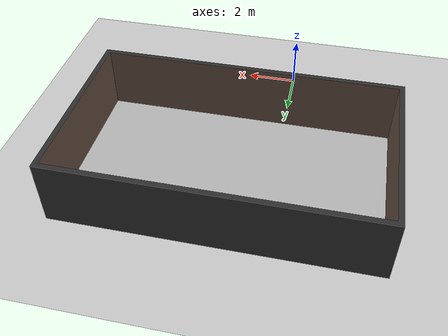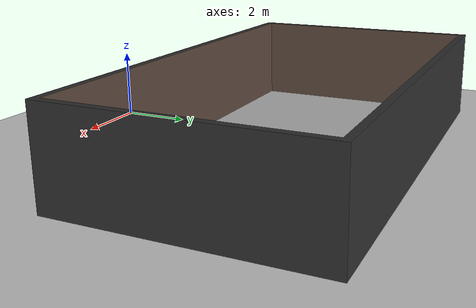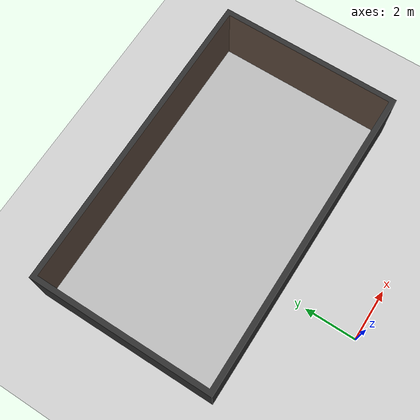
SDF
<?xml version="1.0"?>
<sdf version="1.5">
  <world name="default">
        <include>  <!--Add a light source-->
            <uri>model://sun</uri>
        </include>

        <include>  <!--Add a ground plane-->
            <uri>model://ground_plane</uri>
        </include>

        <include>  <!--Add custom room model-->
            <static>true</static>
            <uri>model://test_room</uri>
            <name> Finished_single_room </name>
            <pose> -4.5 3 0 0 0 0 </pose>
        </include>

  </world>
</sdf>

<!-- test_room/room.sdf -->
<sdf version="1.5">
  <model name="room">
    <static>true</static>
    <link name="room_link">
      <collision name="collision">
        <geometry>
          <mesh>
            <uri>model://test_room/meshes/empty_room.dae</uri>
          </mesh>
        </geometry>
      </collision>
      <visual name="room_mesh">
      <cast_shadows>true</cast_shadows>
        <geometry>
          <mesh>
            <uri>model://test_room/meshes/empty_room.dae</uri>
          </mesh>
        </geometry>
      </visual>
    </link>
  </model>
</sdf>
